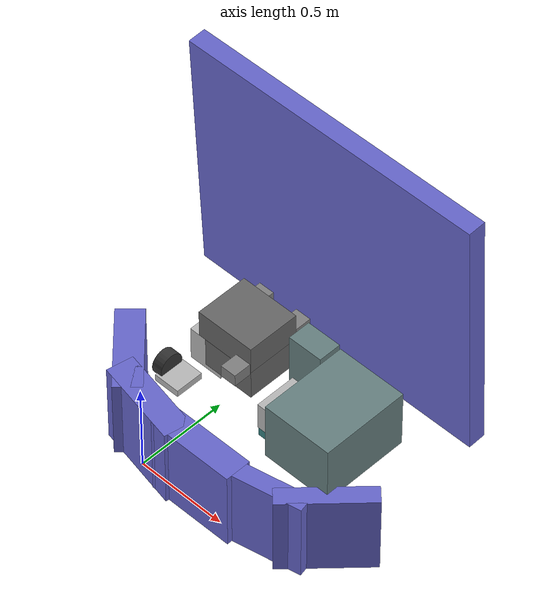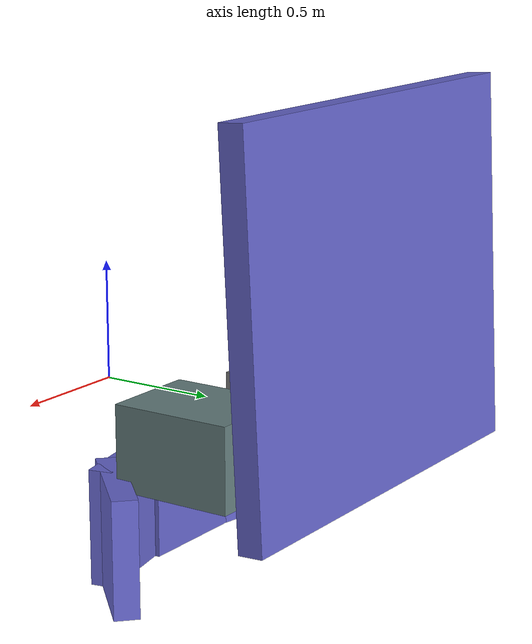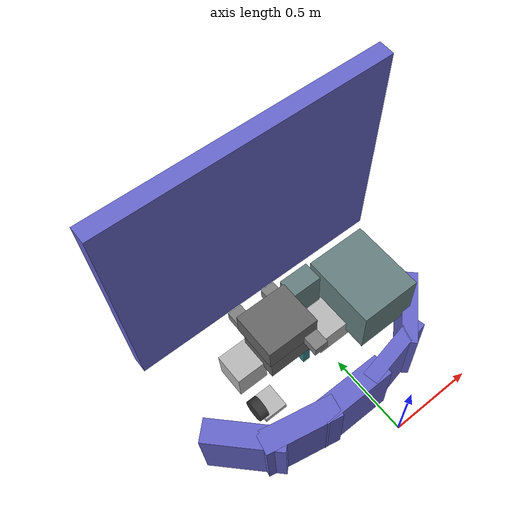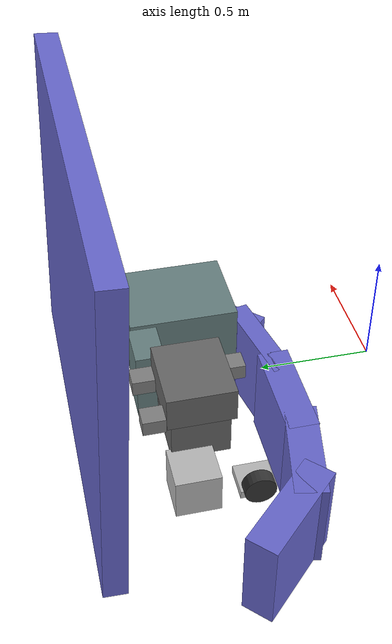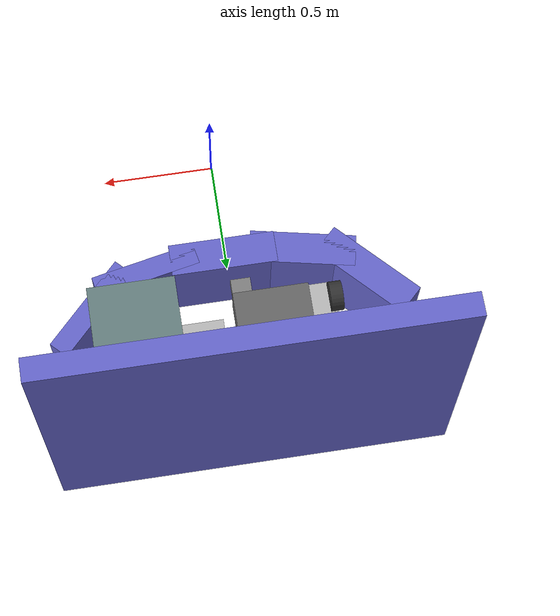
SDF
<sdf version="1.6">
 <world name="default">
  <scene>
   <grid>false</grid>
   <origin_visual>false</origin_visual>
   <sky><clouds><speed>12</speed></clouds></sky>
  </scene>
  <include><uri>model://sun</uri></include>
  <plugin name="stepping_plugin" filename="libstepping_plugin.so"/>
  <physics name="ode" type="ode">
   <ode><constraints><contact_max_correcting_vel>0</contact_max_correcting_vel></constraints></ode>
   <max_step_size>0.002</max_step_size>
   <real_time_update_rate>0</real_time_update_rate>
  </physics>
  <plugin name="gazebo_ros_tf_plugin" filename="libgazebo_ros_tf_plugin.so"/>
  <plugin name="collision_map_plugin" filename="libcollision_map_plugin.so"/>
  <include><pose>0 0.83 -0.46356 0 0 1.570796</pose><uri>model://car_platform</uri></include>
  <include><pose>0 0.367 -0.618 0 0 3.1415</pose><uri>model://car_front</uri></include>
  <include><pose>0 1.23 0.522 0 -1.52 -1.570796</pose><uri>model://car_hood</uri></include>
  <include><pose>-0.40 0.902 -0.303 0 0 0</pose><uri>model://car_alternator</uri></include>
  <include><pose>-0.166 0.850 -0.096 0 0 -1.570796</pose><uri>model://car_engine2</uri></include>
  <include><pose>0.124 1.000 -0.2 0 0 0</pose><uri>model://car_tube_and_tank</uri></include>
  <include><pose>0.177 0.82 -0.284 0 0 0</pose><uri>model://car_coolant_tank</uri></include>
  <include><pose>-0.493 0.638 -0.265 0 0 0</pose><uri>model://car_pulley</uri></include>
 </world>
</sdf>

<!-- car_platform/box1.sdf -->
<sdf version="1.6">
    <model name="box1">
        <allow_auto_disable>true</allow_auto_disable>
        <link name="link_1">
            <kinematic>true</kinematic>
            <pose>0 0 0.1 0 0 0 0</pose>
            <inertial>
                <pose>0 0 -0.08 0 0 0 0</pose>
                <inertia>
                    <ixx>0.03541666666666667</ixx>
                    <ixy>0</ixy>
                    <ixz>0</ixz>
                    <iyy>0.04166666666666667</iyy>
                    <iyz>0</iyz>
                    <izz>0.010416666666666668</izz>
                </inertia>
                <mass>10.0</mass>
            </inertial>
            <visual name="visual">
                <geometry>
                    <box>
                        <size>0.1 0.05 0.2</size>
                    </box>
                </geometry>
                <material>
                    <ambient>0.2 0.5 0.5 1.0</ambient>
                    <diffuse>0.2 0.5 0.5 1.0</diffuse>
                </material>
            </visual>
            <collision name="box_collision">
                <geometry>
                    <box>
                        <size>0.1 0.05 0.2</size>
                    </box>
                </geometry>
                <surface>
                    <friction>
                        <ode>
                            <mu>1.0</mu>
                            <mu2>1.0</mu2>
                        </ode>
                    </friction>
                    <contact>
                        <ode>
                            <kp>1e15</kp>
                            <kd>1e12</kd>
                        </ode>
                    </contact>
                </surface>
            </collision>
        </link>
    </model>
</sdf>

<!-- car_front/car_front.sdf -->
<sdf version="1.6">
    <model name="car_front">
        <allow_auto_disable>true</allow_auto_disable>
        <link name="link_1">
            <kinematic>true</kinematic>
            <pose>-0.644539 -0.18 0.23 0 -0 0.8</pose>
            <visual name="visual">
                <geometry>
                    <box>
                        <size>0.5 0.10 0.47</size>
                    </box>
                </geometry>
                <material>
                    <ambient>0.4 0.4 0.8 1.0</ambient>
                    <diffuse>0.4 0.4 0.8 1.0</diffuse>
                </material>
            </visual>
            <collision name="collision">
                <geometry>
                    <box>
                        <size>0.5 0.10 0.47</size>
                    </box>
                </geometry>
            </collision>
        </link>
        <link name="link_2">
            <kinematic>true</kinematic>
            <pose>-0.370443 -0.03 0.23 0 -0 0.2</pose>
            <visual name="visual">
                <geometry>
                    <box>
                        <size>0.5 0.10 0.47</size>
                    </box>
                </geometry>
                <material>
                    <ambient>0.4 0.4 0.8 1.0</ambient>
                    <diffuse>0.4 0.4 0.8 1.0</diffuse>
                </material>
            </visual>
            <collision name="collision">
                <geometry>
                    <box>
                        <size>0.5 0.10 0.47</size>
                    </box>
                </geometry>
            </collision>
        </link>
        <link name="link_3">
            <kinematic>true</kinematic>
            <pose>0 0 0.23 0 0 0 0</pose>
            <visual name="visual">
                <geometry>
                    <box>
                        <size>0.5 0.15 0.47</size>
                    </box>
                </geometry>
                <material>
                    <ambient>0.4 0.4 0.8 1.0</ambient>
                    <diffuse>0.4 0.4 0.8 1.0</diffuse>
                </material>
            </visual>
            <collision name="collision">
                <geometry>
                    <box>
                        <size>0.5 0.15 0.47</size>
                    </box>
                </geometry>
            </collision>
        </link>
        <link name="link_4">
            <kinematic>true</kinematic>
            <pose>0.37331 -0.03 0.23 0 0 -0.2</pose>
            <visual name="visual">
                <geometry>
                    <box>
                        <size>0.5 0.15 0.47</size>
                    </box>
                </geometry>
                <material>
                    <ambient>0.4 0.4 0.8 1.0</ambient>
                    <diffuse>0.4 0.4 0.8 1.0</diffuse>
                </material>
            </visual>
            <collision name="collision">
                <geometry>
                    <box>
                        <size>0.5 0.15 0.47</size>
                    </box>
                </geometry>
            </collision>
        </link>
        <link name="link_5">
            <kinematic>true</kinematic>
            <pose>0.658656 -0.18 0.23 0 0 -0.8</pose>
            <visual name="visual">
                <geometry>
                    <box>
                        <size>0.5 0.15 0.47</size>
                    </box>
                </geometry>
                <material>
                    <ambient>0.4 0.4 0.8 1.0</ambient>
                    <diffuse>0.4 0.4 0.8 1.0</diffuse>
                </material>
            </visual>
            <collision name="collision">
                <geometry>
                    <box>
                        <size>0.5 0.15 0.47</size>
                    </box>
                </geometry>
            </collision>
        </link>
    </model>
</sdf>

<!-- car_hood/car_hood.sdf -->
<sdf version="1.6">
    <model name="car_hood">
        <allow_auto_disable>true</allow_auto_disable>
        <link name="link_1">
            <kinematic>true</kinematic>
            <pose>0 0 0.05 0 0 0 0</pose>
            <visual name="visual">
                <geometry>
                    <box>
                        <size>1.5 1.75 0.1</size>
                    </box>
                </geometry>
                <material>
                    <ambient>0.4 0.4 0.8 1.0</ambient>
                    <diffuse>0.4 0.4 0.8 1.0</diffuse>
                </material>
            </visual>
            <collision name="collision">
                <geometry>
                    <box>
                        <size>1.5 1.75 0.1</size>
                    </box>
                </geometry>
            </collision>
        </link>
    </model>
</sdf>

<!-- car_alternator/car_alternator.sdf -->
<sdf version="1.6">
    <model name="car_alternator">
        <allow_auto_disable>true</allow_auto_disable>
        <link name="link_1">
            <kinematic>true</kinematic>
            <pose>0 0 0.105 0 0 0 0</pose>
            <visual name="visual">
                <geometry>
                    <box>
                        <size>0.20 0.20 0.20</size>
                    </box>
                </geometry>
            </visual>
            <collision name="collision">
                <geometry>
                    <box>
                        <size>0.20 0.20 0.20</size>
                    </box>
                </geometry>
            </collision>
        </link>
    </model>
</sdf>

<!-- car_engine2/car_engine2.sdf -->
<sdf version="1.6">
    <model name="car_engine2">
        <allow_auto_disable>true</allow_auto_disable>
        <link name="body2">
            <kinematic>true</kinematic>
            <pose>0 0 0.06 0 0 0 0</pose>
            <visual name="visual">
                <geometry>
                    <box>
                        <size>0.26 0.30 0.21</size>
                    </box>
                </geometry>
                <material>
                    <ambient>0.4 0.4 0.4 1.0</ambient>
                    <diffuse>0.4 0.4 0.4 1.0</diffuse>
                </material>
            </visual>
            <collision name="collision">
                <geometry>
                    <box>
                        <size>0.26 0.30 0.21</size>
                    </box>
                </geometry>
            </collision>
        </link>
        <link name="body">
            <kinematic>true</kinematic>
            <pose>0 0 0.24 0 0 0 0</pose>
            <visual name="visual">
                <geometry>
                    <box>
                        <size>0.30 0.34 0.16</size>
                    </box>
                </geometry>
                <material>
                    <ambient>0.4 0.4 0.4 1.0</ambient>
                    <diffuse>0.4 0.4 0.4 1.0</diffuse>
                </material>
            </visual>
            <collision name="collision">
                <geometry>
                    <box>
                        <size>0.30 0.34 0.16</size>
                    </box>
                </geometry>
                <surface>
                    <friction>
                        <ode>
                            <mu>10.00</mu>
                            <mu2>10.00</mu2>
                        </ode>
                    </friction>
                    <contact>
                        <ode>
                            <kp>1e15</kp>
                            <kd>1e11</kd>
                        </ode>
                    </contact>
                </surface>
            </collision>
        </link>
        <link name="lift_tab1">
            <kinematic>true</kinematic>
            <pose>0.20 0.12 0.18 0 0 0 0</pose>
            <visual name="visual">
                <geometry>
                    <box>
                        <size>0.1 0.09 0.07</size>
                    </box>
                </geometry>
                <material>
                    <ambient>0.5 0.5 0.5 1.0</ambient>
                    <diffuse>0.5 0.5 0.5 1.0</diffuse>
                </material>
            </visual>
            <collision name="collision">
                <geometry>
                    <box>
                        <size>0.1 0.09 0.07</size>
                    </box>
                </geometry>
            </collision>
        </link>
        <link name="lift_tab3">
            <kinematic>true</kinematic>
            <pose>-0.20 0.12 0.18 0 0 0 0</pose>
            <visual name="visual">
                <geometry>
                    <box>
                        <size>0.1 0.09 0.07</size>
                    </box>
                </geometry>
                <material>
                    <ambient>0.5 0.5 0.5 1.0</ambient>
                    <diffuse>0.5 0.5 0.5 1.0</diffuse>
                </material>
            </visual>
            <collision name="collision">
                <geometry>
                    <box>
                        <size>0.1 0.09 0.07</size>
                    </box>
                </geometry>
            </collision>
        </link>
        <link name="lift_tab4">
            <kinematic>true</kinematic>
            <pose>-0.20 -0.12 0.18 0 0 0 0</pose>
            <visual name="visual">
                <geometry>
                    <box>
                        <size>0.1 0.09 0.07</size>
                    </box>
                </geometry>
                <material>
                    <ambient>0.5 0.5 0.5 1.0</ambient>
                    <diffuse>0.5 0.5 0.5 1.0</diffuse>
                </material>
            </visual>
            <collision name="collision">
                <geometry>
                    <box>
                        <size>0.1 0.09 0.07</size>
                    </box>
                </geometry>
            </collision>
        </link>
    </model>
</sdf>

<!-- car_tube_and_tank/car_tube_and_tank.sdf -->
<sdf version="1.6">
    <model name="car_tube_and_tank">
        <allow_auto_disable>true</allow_auto_disable>
        <link name="box">
            <kinematic>true</kinematic>
            <pose>0.32 -0.2 0.17 0 0 0 0</pose>
            <visual name="visual">
                <geometry>
                    <box>
                        <size>0.40 0.5 0.34</size>
                    </box>
                </geometry>
                <material>
                    <ambient>0.4 0.5 0.5 1.0</ambient>
                    <diffuse>0.4 0.5 0.5 1.0</diffuse>
                </material>
            </visual>
            <collision name="collision">
                <geometry>
                    <box>
                        <size>0.40 0.5 0.34</size>
                    </box>
                </geometry>
            </collision>
        </link>
        <link name="tube">
            <kinematic>true</kinematic>
            <pose>0 0 0.17 0 0 0 0</pose>
            <visual name="visual">
                <geometry>
                    <box>
                        <size>0.2 0.13 0.34</size>
                    </box>
                </geometry>
                <material>
                    <ambient>0.4 0.5 0.5 1.0</ambient>
                    <diffuse>0.4 0.5 0.5 1.0</diffuse>
                </material>
            </visual>
            <collision name="collision">
                <geometry>
                    <box>
                        <size>0.2 0.18 0.34</size>
                    </box>
                </geometry>
            </collision>
        </link>
    </model>
</sdf>

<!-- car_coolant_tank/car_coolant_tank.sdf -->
<sdf version="1.6">
    <model name="car_coolant_tank">
        <allow_auto_disable>true</allow_auto_disable>
        <link name="link_1">
            <kinematic>true</kinematic>
            <pose>0 0 0.08 0 0 0 0</pose>
            <visual name="visual">
                <geometry>
                    <box>
                        <size>0.26 0.24 0.16</size>
                    </box>
                </geometry>
            </visual>
            <collision name="box_collision">
                <geometry>
                    <box>
                        <size>0.26 0.24 0.16</size>
                    </box>
                </geometry>
            </collision>
        </link>
    </model>
</sdf>

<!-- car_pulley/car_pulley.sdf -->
<sdf version="1.6">
    <model name="car_pulley">
        <allow_auto_disable>true</allow_auto_disable>
        <link name="plate">
            <kinematic>true</kinematic>
            <pose>0.075 0 0.02 0 0 0</pose>
            <visual name="visual">
                <geometry>
                    <box>
                        <size>0.15 0.16 0.04</size>
                    </box>
                </geometry>
            </visual>
            <collision name="collision">
                <geometry>
                    <box>
                        <size>0.15 0.16 0.04</size>
                    </box>
                </geometry>
            </collision>
        </link>
        <link name="pulley">
            <kinematic>true</kinematic>
            <pose>0 0 0.06 0 1.570796 0</pose>
            <visual name="visual">
                <geometry>
                    <cylinder>
                        <radius>0.07</radius>
                        <length>0.06</length>
                    </cylinder>
                </geometry>
                <material>
                    <ambient>0.2 0.2 0.2 1.0</ambient>
                    <diffuse>0.2 0.2 0.2 1.0</diffuse>
                </material>
            </visual>
            <collision name="collision">
                <geometry>
                    <cylinder>
                        <radius>0.07</radius>
                        <length>0.06</length>
                    </cylinder>
                </geometry>
            </collision>
        </link>
    </model>
</sdf>
